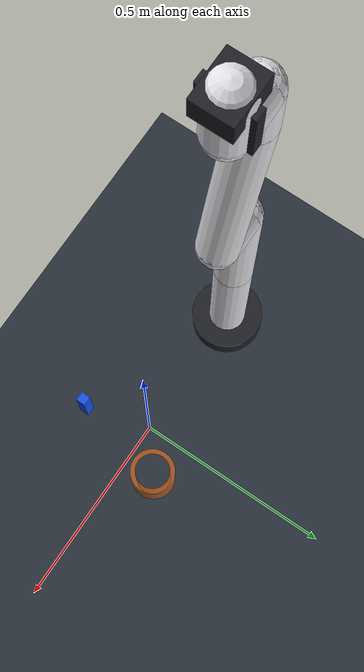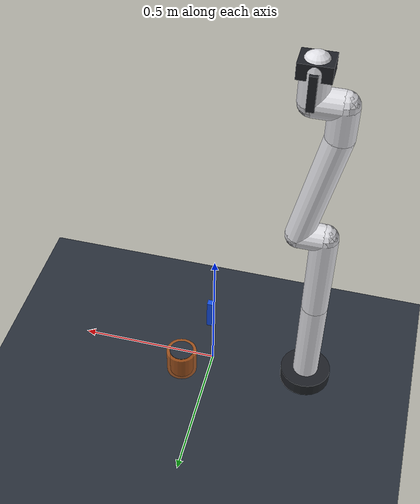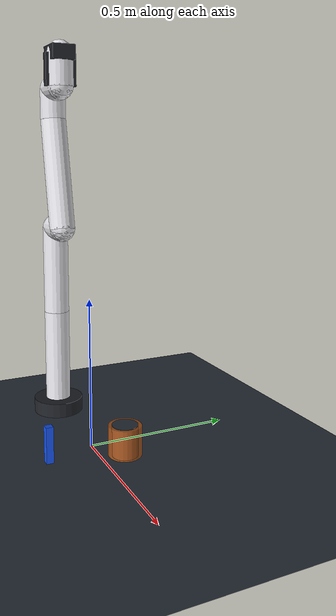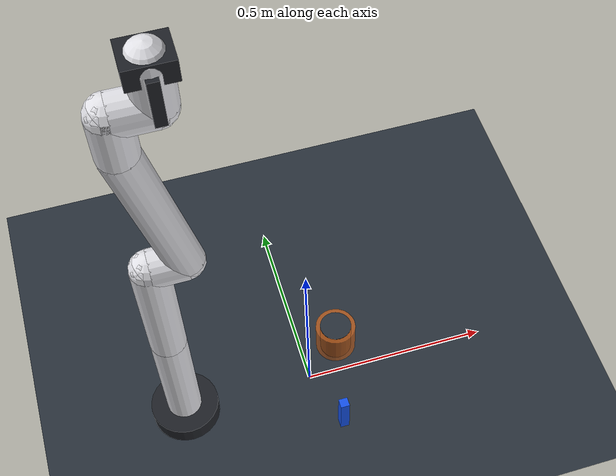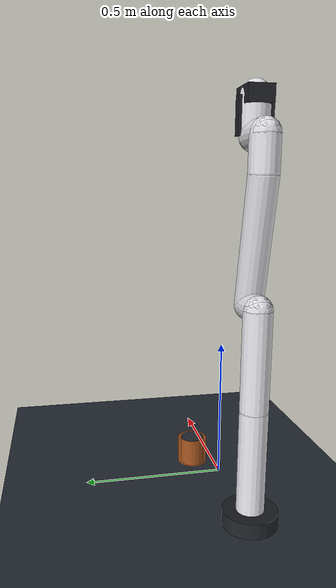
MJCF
<mujoco model="promptmorph_franka_tabletop">
  <compiler angle="radian" autolimits="true"/>
  <option timestep="0.002" integrator="implicitfast" gravity="0 0 -9.81"/>
  <visual>
    <headlight ambient="0.35 0.35 0.35" diffuse="0.7 0.7 0.7" specular="0.2 0.2 0.2"/>
    <rgba haze="0.15 0.22 0.28 1"/>
    <global azimuth="135" elevation="-25"/>
  </visual>
  <default>
    <joint armature="0.1" damping="1.0"/>
    <geom contype="0" conaffinity="0" friction="0.8 0.1 0.1"/>
    <default class="arm">
      <geom type="capsule" size="0.045" rgba="0.88 0.88 0.9 1"/>
    </default>
  </default>
  <asset>
    <material name="table" rgba="0.16 0.19 0.23 1" roughness="0.85"/>
    <material name="marker" rgba="0.08 0.32 0.92 1"/>
    <material name="cup" rgba="0.95 0.45 0.10 0.62"/>
    <material name="dark" rgba="0.12 0.13 0.15 1"/>
  </asset>
  <worldbody>
    <light pos="0 0 1.8" dir="0 0 -1" directional="true"/>
    <geom name="floor" type="plane" size="2 2 0.05" material="table" contype="1" conaffinity="1"/>
    <camera name="overview" pos="1.15 -1.05 0.95" xyaxes="0.67 0.74 0 -0.40 0.36 0.84"/>

    <body name="panda_link0" pos="-0.35 0 0">
      <geom type="cylinder" size="0.09 0.05" material="dark"/>
      <body name="panda_link1" pos="0 0 0.05">
        <joint name="panda_joint1" type="hinge" axis="0 0 1" range="-2.8973 2.8973"/>
        <geom class="arm" fromto="0 0 0 0 0 0.333"/>
        <body name="panda_link2" pos="0 0 0.333">
          <joint name="panda_joint2" type="hinge" axis="0 1 0" range="-1.7628 1.7628"/>
          <geom class="arm" fromto="0 0 0 0 0 0.316"/>
          <body name="panda_link3" pos="0 0 0.316">
            <joint name="panda_joint3" type="hinge" axis="0 0 1" range="-2.8973 2.8973"/>
            <geom class="arm" fromto="0 0 0 0.0825 0 0"/>
            <body name="panda_link4" pos="0.0825 0 0">
              <joint name="panda_joint4" type="hinge" axis="0 -1 0" range="-3.0718 -0.0698"/>
              <geom class="arm" fromto="0 0 0 -0.0825 0 0.384"/>
              <body name="panda_link5" pos="-0.0825 0 0.384">
                <joint name="panda_joint5" type="hinge" axis="0 0 1" range="-2.8973 2.8973"/>
                <geom class="arm" fromto="0 0 0 0 0 0.107"/>
                <body name="panda_link6" pos="0 0 0.107">
                  <joint name="panda_joint6" type="hinge" axis="0 1 0" range="-0.0175 3.7525"/>
                  <geom class="arm" fromto="0 0 0 0.088 0 0"/>
                  <body name="panda_link7" pos="0.088 0 0">
                    <joint name="panda_joint7" type="hinge" axis="0 0 1" range="-2.8973 2.8973"/>
                    <geom class="arm" fromto="0 0 0 0 0 0.11"/>
                    <body name="panda_hand" pos="0 0 0.11">
                      <geom type="box" size="0.05 0.04 0.025" material="dark"/>
                      <geom name="left_finger" type="box" pos="0 0.045 -0.055" size="0.012 0.009 0.055" material="dark"/>
                      <geom name="right_finger" type="box" pos="0 -0.045 -0.055" size="0.012 0.009 0.055" material="dark"/>
                      <site name="pinch" pos="0 0 -0.105" size="0.012" rgba="0.2 1 0.3 1"/>
                    </body>
                  </body>
                </body>
              </body>
            </body>
          </body>
        </body>
      </body>
    </body>

    <body name="marker" mocap="true" pos="0.05 -0.16 0.06">
      <geom name="marker_geom" type="box" size="0.012 0.012 0.06" material="marker"/>
    </body>
    <body name="cup" mocap="true" pos="0.10 0.08 0.05">
      <geom name="cup_body" type="cylinder" size="0.055 0.05" material="cup"/>
      <geom name="cup_inner" type="cylinder" size="0.043 0.052" rgba="0.16 0.19 0.23 1"/>
    </body>
  </worldbody>
  <actuator>
    <position name="panda_actuator1" joint="panda_joint1" kp="1000" kv="100"/>
    <position name="panda_actuator2" joint="panda_joint2" kp="1000" kv="100"/>
    <position name="panda_actuator3" joint="panda_joint3" kp="1000" kv="100"/>
    <position name="panda_actuator4" joint="panda_joint4" kp="1000" kv="100"/>
    <position name="panda_actuator5" joint="panda_joint5" kp="1000" kv="100"/>
    <position name="panda_actuator6" joint="panda_joint6" kp="1000" kv="100"/>
    <position name="panda_actuator7" joint="panda_joint7" kp="1000" kv="100"/>
  </actuator>
</mujoco>
